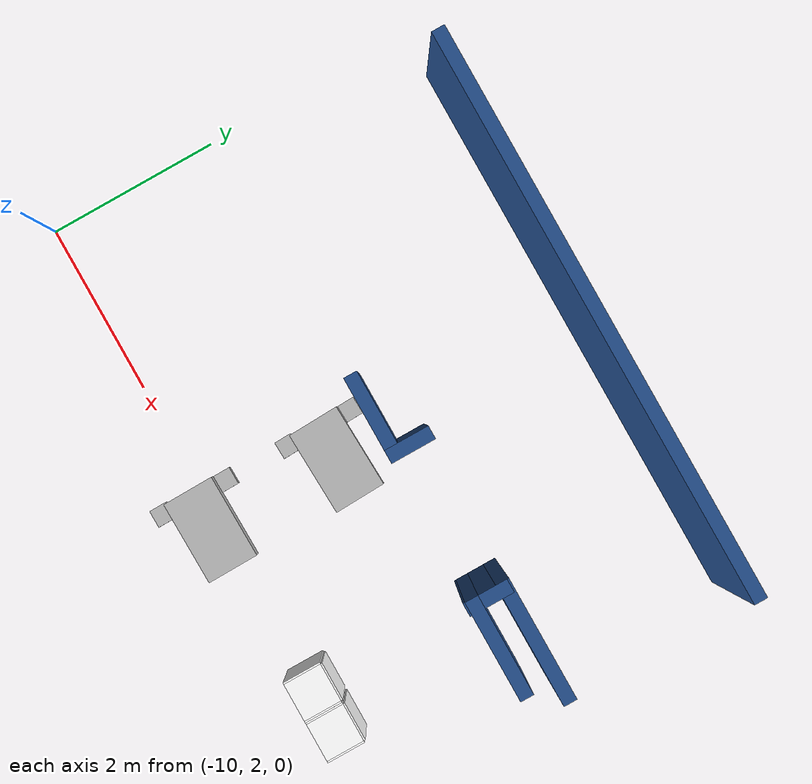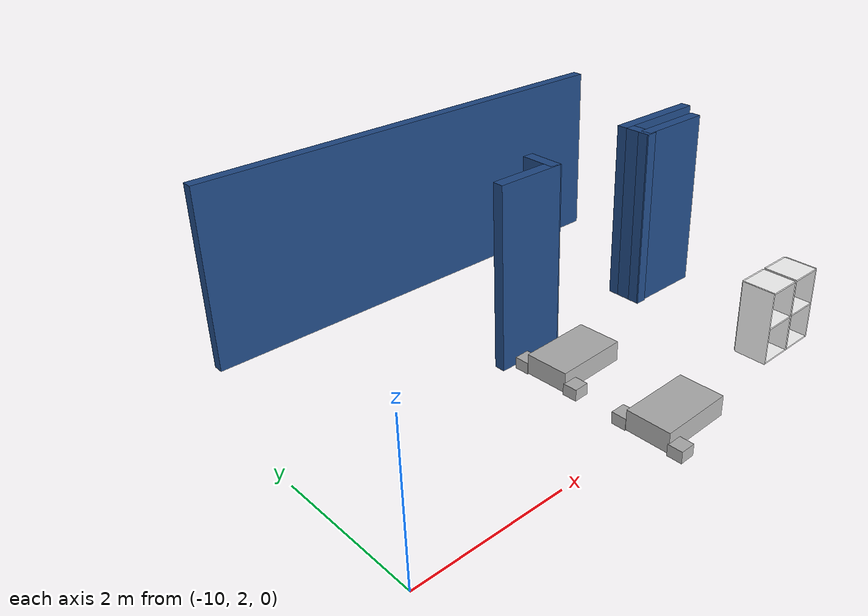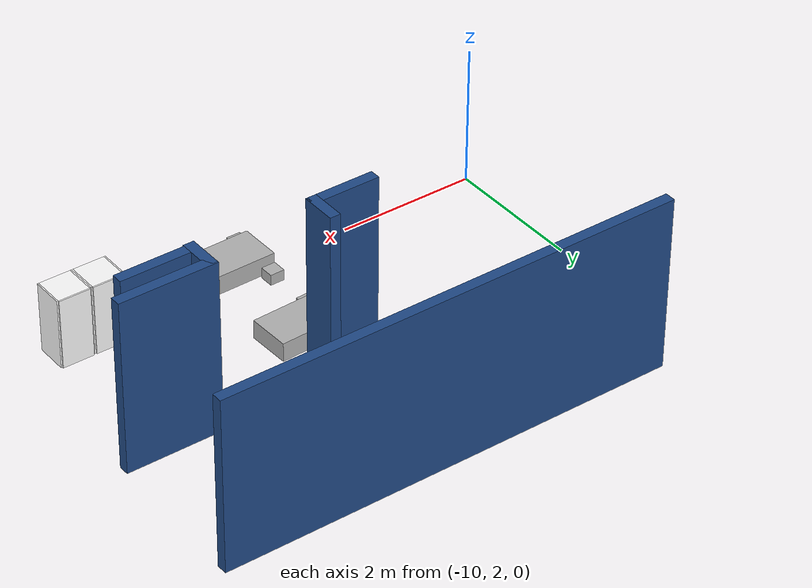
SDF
<sdf version="1.7">
 <world name="default">
  <model name="among_us_world">
   <pose>0.133216 -0.12311 0 0 -0 0</pose>
   <link name="Wall_109">
    <collision name="Wall_109_Collision">
     <geometry><box><size>1.12677 0.15 2.5</size></box></geometry>
     <pose>0 0 1.25 0 -0 0</pose>
    </collision>
    <visual name="Wall_109_Visual">
     <pose>0 0 1.25 0 -0 0</pose>
     <geometry><box><size>1.12677 0.15 2.5</size></box></geometry>
     <material>
      <ambient>0.12549 0.290196 0.529412 1</ambient>
      <diffuse>0.12549 0.290196 0.529412 1</diffuse>
      <specular>0.08 0.08 0.08 1</specular>
      <emissive>0 0 0 1</emissive>
      <pbr>
       <metal>
        <albedo_map>model://among_us_world/materials/textures/ceiling_tiled_32_74_135.jpg</albedo_map>
        <roughness>0.85</roughness>
        <metalness>0</metalness>
       </metal>
      </pbr>
     </material>
     <meta><layer>0</layer></meta>
    </visual>
    <pose>-3.97634 4.1841 0 0 -0 3.14159</pose>
   </link>
   <link name="Wall_110">
    <collision name="Wall_110_Collision">
     <geometry><box><size>0.5 0.15 2.5</size></box></geometry>
     <pose>0 0 1.25 0 -0 0</pose>
    </collision>
    <visual name="Wall_110_Visual">
     <pose>0 0 1.25 0 -0 0</pose>
     <geometry><box><size>0.5 0.15 2.5</size></box></geometry>
     <material>
      <ambient>0.12549 0.290196 0.529412 1</ambient>
      <diffuse>0.12549 0.290196 0.529412 1</diffuse>
      <specular>0.08 0.08 0.08 1</specular>
      <emissive>0 0 0 1</emissive>
      <pbr><metal><roughness>0.85</roughness><metalness>0</metalness></metal></pbr>
     </material>
     <meta><layer>0</layer></meta>
    </visual>
    <pose>-4.46462 4.33852 0 0 -0 1.5708</pose>
   </link>
   <link name="Wall_111">
    <collision name="Wall_111_Collision">
     <geometry><box><size>1.37673 0.15 2.5</size></box></geometry>
     <pose>0 0 1.25 0 -0 0</pose>
    </collision>
    <visual name="Wall_111_Visual">
     <pose>0 0 1.25 0 -0 0</pose>
     <geometry><box><size>1.37673 0.15 2.5</size></box></geometry>
     <material>
      <ambient>0.12549 0.290196 0.529412 1</ambient>
      <diffuse>0.12549 0.290196 0.529412 1</diffuse>
      <specular>0.08 0.08 0.08 1</specular>
      <emissive>0 0 0 1</emissive>
      <pbr>
       <metal>
        <albedo_map>model://asphalt_plane/materials/textures/tarmac.png</albedo_map>
        <roughness>0.85</roughness>
        <metalness>0</metalness>
       </metal>
      </pbr>
     </material>
     <meta><layer>0</layer></meta>
    </visual>
    <pose>-3.85134 4.5341 0 0 -0 0</pose>
   </link>
   <link name="Wall_31">
    <collision name="Wall_31_Collision">
     <geometry><box><size>6.5 0.15 2.5</size></box></geometry>
     <pose>0 0 1.25 0 -0 0</pose>
    </collision>
    <visual name="Wall_31_Visual">
     <pose>0 0 1.25 0 -0 0</pose>
     <geometry><box><size>6.5 0.15 2.5</size></box></geometry>
     <material>
      <ambient>0.12549 0.290196 0.529412 1</ambient>
      <diffuse>0.12549 0.290196 0.529412 1</diffuse>
      <specular>0.08 0.08 0.08 1</specular>
      <emissive>0 0 0 1</emissive>
      <pbr>
       <metal>
        <albedo_map>model://asphalt_plane/materials/textures/tarmac.png</albedo_map>
        <roughness>0.85</roughness>
        <metalness>0</metalness>
       </metal>
      </pbr>
     </material>
     <meta><layer>0</layer></meta>
    </visual>
    <pose>-6.36249 6.66662 0 0 -0 3.14159</pose>
   </link>
   <link name="Wall_97">
    <collision name="Wall_97_Collision">
     <geometry><box><size>0.5 0.15 2.5</size></box></geometry>
     <pose>0 0 1.25 0 -0 0</pose>
    </collision>
    <visual name="Wall_97_Visual">
     <pose>0 0 1.25 0 -0 0</pose>
     <geometry><box><size>0.5 0.15 2.5</size></box></geometry>
     <material>
      <ambient>0.12549 0.290196 0.529412 1</ambient>
      <diffuse>0.12549 0.290196 0.529412 1</diffuse>
      <specular>0.08 0.08 0.08 1</specular>
      <emissive>0 0 0 1</emissive>
      <pbr><metal><roughness>0.85</roughness><metalness>0</metalness></metal></pbr>
     </material>
     <meta><layer>0</layer></meta>
    </visual>
    <pose>-6.16454 4.40555 0 0 -0 -1.5708</pose>
   </link>
   <link name="Wall_98">
    <collision name="Wall_98_Collision">
     <geometry><box><size>0.954414 0.15 2.5</size></box></geometry>
     <pose>0 0 1.25 0 -0 0</pose>
    </collision>
    <visual name="Wall_98_Visual">
     <pose>0 0 1.25 0 -0 0</pose>
     <geometry><box><size>0.954414 0.15 2.5</size></box></geometry>
     <material>
      <ambient>0.12549 0.290196 0.529412 1</ambient>
      <diffuse>0.12549 0.290196 0.529412 1</diffuse>
      <specular>0.08 0.08 0.08 1</specular>
      <emissive>0 0 0 1</emissive>
      <pbr>
       <metal>
        <albedo_map>model://among_us_world/materials/textures/ceiling_tiled_32_74_135.jpg</albedo_map>
        <roughness>0.85</roughness>
        <metalness>0</metalness>
       </metal>
      </pbr>
     </material>
     <meta><layer>0</layer></meta>
    </visual>
    <pose>-6.5823 4.23055 0 0 -0 3.14159</pose>
   </link>
   <static>1</static>
  </model>
  <model name="bed">
   <link name="link_1">
    <inertial>
     <mass>0.166557</mass>
     <inertia>
      <ixx>0.00618823</ixx>
      <ixy>0</ixy>
      <ixz>0</ixz>
      <iyy>0.0149173</iyy>
      <iyz>0</iyz>
      <izz>0.0190304</izz>
     </inertia>
    </inertial>
    <pose>0.268517 -0.007523 0.053425 0 -0 0</pose>
    <visual name="visual">
     <geometry><box><size>1 0.609172 0.273416</size></box></geometry>
     <material>
      <ambient>0.7 0.7 0.7 1</ambient>
      <diffuse>0.7 0.7 0.7 1</diffuse>
      <specular>0.08 0.08 0.08 1</specular>
      <emissive>0 0 0 1</emissive>
      <pbr><metal><roughness>0.8</roughness><metalness>0</metalness></metal></pbr>
     </material>
    </visual>
    <collision name="collision">
     <geometry><box><size>1 0.609172 0.273416</size></box></geometry>
     <surface>
      <friction>
       <ode><mu>1</mu><mu2>1</mu2><fdir1>0 0 0</fdir1><slip1>0</slip1><slip2>0</slip2></ode>
       <torsional>
        <coefficient>1</coefficient>
        <patch_radius>0</patch_radius>
        <surface_radius>0</surface_radius>
        <use_patch_radius>1</use_patch_radius>
        <ode><slip>0</slip></ode>
       </torsional>
      </friction>
      <bounce><restitution_coefficient>0</restitution_coefficient><threshold>1e+06</threshold></bounce>
      <contact>
       <collide_without_contact>0</collide_without_contact>
       <collide_without_contact_bitmask>1</collide_without_contact_bitmask>
       <collide_bitmask>1</collide_bitmask>
       <ode>
        <soft_cfm>0</soft_cfm>
        <soft_erp>0.2</soft_erp>
        <kp>1e+13</kp>
        <kd>1</kd>
        <max_vel>0.01</max_vel>
        <min_depth>0</min_depth>
       </ode>
       <bullet>
        <split_impulse>1</split_impulse>
        <split_impulse_penetration_threshold>-0.01</split_impulse_penetration_threshold>
        <soft_cfm>0</soft_cfm>
        <soft_erp>0.2</soft_erp>
        <kp>1e+13</kp>
        <kd>1</kd>
       </bullet>
      </contact>
     </surface>
    </collision>
   </link>
   <link name="link_2">
    <inertial>
     <mass>0.00661892</mass>
     <inertia>
      <ixx>3.651e-05</ixx>
      <ixy>0</ixy>
      <ixz>0</ixz>
      <iyy>3.722e-05</iyy>
      <iyz>0</iyz>
      <izz>4.631e-05</izz>
     </inertia>
    </inertial>
    <pose>-0.144333 -0.400103 -0.02691 0 -0 0</pose>
    <visual name="visual">
     <geometry><box><size>0.206441 0.203314 0.157681</size></box></geometry>
     <material>
      <ambient>0.7 0.7 0.7 1</ambient>
      <diffuse>0.7 0.7 0.7 1</diffuse>
      <specular>0.08 0.08 0.08 1</specular>
      <emissive>0 0 0 1</emissive>
      <pbr><metal><roughness>0.8</roughness><metalness>0</metalness></metal></pbr>
     </material>
    </visual>
    <collision name="collision">
     <geometry><box><size>0.206441 0.203314 0.157681</size></box></geometry>
     <surface>
      <friction>
       <ode><mu>1</mu><mu2>1</mu2><fdir1>0 0 0</fdir1><slip1>0</slip1><slip2>0</slip2></ode>
       <torsional>
        <coefficient>1</coefficient>
        <patch_radius>0</patch_radius>
        <surface_radius>0</surface_radius>
        <use_patch_radius>1</use_patch_radius>
        <ode><slip>0</slip></ode>
       </torsional>
      </friction>
      <bounce><restitution_coefficient>0</restitution_coefficient><threshold>1e+06</threshold></bounce>
      <contact>
       <collide_without_contact>0</collide_without_contact>
       <collide_without_contact_bitmask>1</collide_without_contact_bitmask>
       <collide_bitmask>1</collide_bitmask>
       <ode>
        <soft_cfm>0</soft_cfm>
        <soft_erp>0.2</soft_erp>
        <kp>1e+13</kp>
        <kd>1</kd>
        <max_vel>0.01</max_vel>
        <min_depth>0</min_depth>
       </ode>
       <bullet>
        <split_impulse>1</split_impulse>
        <split_impulse_penetration_threshold>-0.01</split_impulse_penetration_threshold>
        <soft_cfm>0</soft_cfm>
        <soft_erp>0.2</soft_erp>
        <kp>1e+13</kp>
        <kd>1</kd>
       </bullet>
      </contact>
     </surface>
    </collision>
   </link>
   <link name="link_2_clone">
    <inertial>
     <mass>0.00661892</mass>
     <inertia>
      <ixx>3.651e-05</ixx>
      <ixy>0</ixy>
      <ixz>0</ixz>
      <iyy>3.722e-05</iyy>
      <iyz>0</iyz>
      <izz>4.631e-05</izz>
     </inertia>
    </inertial>
    <pose>-0.124183 0.407627 -0.026515 0 -0 0</pose>
    <visual name="visual">
     <geometry><box><size>0.206441 0.203314 0.157681</size></box></geometry>
     <material>
      <ambient>0.7 0.7 0.7 1</ambient>
      <diffuse>0.7 0.7 0.7 1</diffuse>
      <specular>0.08 0.08 0.08 1</specular>
      <emissive>0 0 0 1</emissive>
      <pbr><metal><roughness>0.8</roughness><metalness>0</metalness></metal></pbr>
     </material>
    </visual>
    <collision name="collision">
     <geometry><box><size>0.206441 0.203314 0.157681</size></box></geometry>
     <surface>
      <friction>
       <ode><mu>1</mu><mu2>1</mu2><fdir1>0 0 0</fdir1><slip1>0</slip1><slip2>0</slip2></ode>
       <torsional>
        <coefficient>1</coefficient>
        <patch_radius>0</patch_radius>
        <surface_radius>0</surface_radius>
        <use_patch_radius>1</use_patch_radius>
        <ode><slip>0</slip></ode>
       </torsional>
      </friction>
      <bounce><restitution_coefficient>0</restitution_coefficient><threshold>1e+06</threshold></bounce>
      <contact>
       <collide_without_contact>0</collide_without_contact>
       <collide_without_contact_bitmask>1</collide_without_contact_bitmask>
       <collide_bitmask>1</collide_bitmask>
       <ode>
        <soft_cfm>0</soft_cfm>
        <soft_erp>0.2</soft_erp>
        <kp>1e+13</kp>
        <kd>1</kd>
        <max_vel>0.01</max_vel>
        <min_depth>0</min_depth>
       </ode>
       <bullet>
        <split_impulse>1</split_impulse>
        <split_impulse_penetration_threshold>-0.01</split_impulse_penetration_threshold>
        <soft_cfm>0</soft_cfm>
        <soft_erp>0.2</soft_erp>
        <kp>1e+13</kp>
        <kd>1</kd>
       </bullet>
      </contact>
     </surface>
    </collision>
   </link>
   <static>1</static>
   <pose>-6.50619 3.49112 0.093278 1.6e-05 -0 0.037709</pose>
  </model>
  <model name="bed_clone">
   <link name="link_1">
    <inertial>
     <mass>0.166557</mass>
     <inertia>
      <ixx>0.00618823</ixx>
      <ixy>0</ixy>
      <ixz>0</ixz>
      <iyy>0.0149173</iyy>
      <iyz>0</iyz>
      <izz>0.0190304</izz>
     </inertia>
    </inertial>
    <pose>0.268517 -0.007523 0.053425 0 -0 0</pose>
    <visual name="visual">
     <geometry><box><size>1 0.609172 0.273416</size></box></geometry>
     <material>
      <ambient>0.7 0.7 0.7 1</ambient>
      <diffuse>0.7 0.7 0.7 1</diffuse>
      <specular>0.08 0.08 0.08 1</specular>
      <emissive>0 0 0 1</emissive>
      <pbr><metal><roughness>0.8</roughness><metalness>0</metalness></metal></pbr>
     </material>
    </visual>
    <collision name="collision">
     <geometry><box><size>1 0.609172 0.273416</size></box></geometry>
     <surface>
      <friction>
       <ode><mu>1</mu><mu2>1</mu2><fdir1>0 0 0</fdir1><slip1>0</slip1><slip2>0</slip2></ode>
       <torsional>
        <coefficient>1</coefficient>
        <patch_radius>0</patch_radius>
        <surface_radius>0</surface_radius>
        <use_patch_radius>1</use_patch_radius>
        <ode><slip>0</slip></ode>
       </torsional>
      </friction>
      <bounce><restitution_coefficient>0</restitution_coefficient><threshold>1e+06</threshold></bounce>
      <contact>
       <collide_without_contact>0</collide_without_contact>
       <collide_without_contact_bitmask>1</collide_without_contact_bitmask>
       <collide_bitmask>1</collide_bitmask>
       <ode>
        <soft_cfm>0</soft_cfm>
        <soft_erp>0.2</soft_erp>
        <kp>1e+13</kp>
        <kd>1</kd>
        <max_vel>0.01</max_vel>
        <min_depth>0</min_depth>
       </ode>
       <bullet>
        <split_impulse>1</split_impulse>
        <split_impulse_penetration_threshold>-0.01</split_impulse_penetration_threshold>
        <soft_cfm>0</soft_cfm>
        <soft_erp>0.2</soft_erp>
        <kp>1e+13</kp>
        <kd>1</kd>
       </bullet>
      </contact>
     </surface>
    </collision>
   </link>
   <link name="link_2">
    <inertial>
     <mass>0.00661892</mass>
     <inertia>
      <ixx>3.651e-05</ixx>
      <ixy>0</ixy>
      <ixz>0</ixz>
      <iyy>3.722e-05</iyy>
      <iyz>0</iyz>
      <izz>4.631e-05</izz>
     </inertia>
    </inertial>
    <pose>-0.144333 -0.400103 -0.02691 0 -0 0</pose>
    <visual name="visual">
     <geometry><box><size>0.206441 0.203314 0.157681</size></box></geometry>
     <material>
      <ambient>0.7 0.7 0.7 1</ambient>
      <diffuse>0.7 0.7 0.7 1</diffuse>
      <specular>0.08 0.08 0.08 1</specular>
      <emissive>0 0 0 1</emissive>
      <pbr><metal><roughness>0.8</roughness><metalness>0</metalness></metal></pbr>
     </material>
    </visual>
    <collision name="collision">
     <geometry><box><size>0.206441 0.203314 0.157681</size></box></geometry>
     <surface>
      <friction>
       <ode><mu>1</mu><mu2>1</mu2><fdir1>0 0 0</fdir1><slip1>0</slip1><slip2>0</slip2></ode>
       <torsional>
        <coefficient>1</coefficient>
        <patch_radius>0</patch_radius>
        <surface_radius>0</surface_radius>
        <use_patch_radius>1</use_patch_radius>
        <ode><slip>0</slip></ode>
       </torsional>
      </friction>
      <bounce><restitution_coefficient>0</restitution_coefficient><threshold>1e+06</threshold></bounce>
      <contact>
       <collide_without_contact>0</collide_without_contact>
       <collide_without_contact_bitmask>1</collide_without_contact_bitmask>
       <collide_bitmask>1</collide_bitmask>
       <ode>
        <soft_cfm>0</soft_cfm>
        <soft_erp>0.2</soft_erp>
        <kp>1e+13</kp>
        <kd>1</kd>
        <max_vel>0.01</max_vel>
        <min_depth>0</min_depth>
       </ode>
       <bullet>
        <split_impulse>1</split_impulse>
        <split_impulse_penetration_threshold>-0.01</split_impulse_penetration_threshold>
        <soft_cfm>0</soft_cfm>
        <soft_erp>0.2</soft_erp>
        <kp>1e+13</kp>
        <kd>1</kd>
       </bullet>
      </contact>
     </surface>
    </collision>
   </link>
   <link name="link_2_clone">
    <inertial>
     <mass>0.00661892</mass>
     <inertia>
      <ixx>3.651e-05</ixx>
      <ixy>0</ixy>
      <ixz>0</ixz>
      <iyy>3.722e-05</iyy>
      <iyz>0</iyz>
      <izz>4.631e-05</izz>
     </inertia>
    </inertial>
    <pose>-0.124183 0.407627 -0.026515 0 -0 0</pose>
    <visual name="visual">
     <geometry><box><size>0.206441 0.203314 0.157681</size></box></geometry>
     <material>
      <ambient>0.7 0.7 0.7 1</ambient>
      <diffuse>0.7 0.7 0.7 1</diffuse>
      <specular>0.08 0.08 0.08 1</specular>
      <emissive>0 0 0 1</emissive>
      <pbr><metal><roughness>0.8</roughness><metalness>0</metalness></metal></pbr>
     </material>
    </visual>
    <collision name="collision">
     <geometry><box><size>0.206441 0.203314 0.157681</size></box></geometry>
     <surface>
      <friction>
       <ode><mu>1</mu><mu2>1</mu2><fdir1>0 0 0</fdir1><slip1>0</slip1><slip2>0</slip2></ode>
       <torsional>
        <coefficient>1</coefficient>
        <patch_radius>0</patch_radius>
        <surface_radius>0</surface_radius>
        <use_patch_radius>1</use_patch_radius>
        <ode><slip>0</slip></ode>
       </torsional>
      </friction>
      <bounce><restitution_coefficient>0</restitution_coefficient><threshold>1e+06</threshold></bounce>
      <contact>
       <collide_without_contact>0</collide_without_contact>
       <collide_without_contact_bitmask>1</collide_without_contact_bitmask>
       <collide_bitmask>1</collide_bitmask>
       <ode>
        <soft_cfm>0</soft_cfm>
        <soft_erp>0.2</soft_erp>
        <kp>1e+13</kp>
        <kd>1</kd>
        <max_vel>0.01</max_vel>
        <min_depth>0</min_depth>
       </ode>
       <bullet>
        <split_impulse>1</split_impulse>
        <split_impulse_penetration_threshold>-0.01</split_impulse_penetration_threshold>
        <soft_cfm>0</soft_cfm>
        <soft_erp>0.2</soft_erp>
        <kp>1e+13</kp>
        <kd>1</kd>
       </bullet>
      </contact>
     </surface>
    </collision>
   </link>
   <static>1</static>
   <pose>-6.51457 1.90124 0.093283 0 -0 0.014289</pose>
  </model>
  <model name="cabinet">
   <static>1</static>
   <link name="cabinet_bottom_plate">
    <inertial>
     <pose>0 0 -1 0 -0 0</pose>
     <inertia><ixx>2.05</ixx><ixy>0</ixy><ixz>0</ixz><iyy>2.05</iyy><iyz>0</iyz><izz>2.05</izz></inertia>
     <mass>25</mass>
    </inertial>
    <collision name="cabinet_bottom_plate_geom">
     <pose>0 0 0.01 0 -0 0</pose>
     <geometry><box><size>0.45 0.45 0.02</size></box></geometry>
    </collision>
    <visual name="cabinet_bottom_plate_geom_visual">
     <pose>0 0 0.01 0 -0 0</pose>
     <geometry><box><size>0.45 0.45 0.02</size></box></geometry>
     <material>
      <ambient>1 1 1 1</ambient>
      <diffuse>1 1 1 1</diffuse>
      <specular>0.08 0.08 0.08 1</specular>
      <emissive>0 0 0 1</emissive>
      <pbr>
       <metal>
        <albedo_map>model://among_us_world/materials/textures/legacy_wood.jpg</albedo_map>
        <roughness>0.62</roughness>
        <metalness>0</metalness>
       </metal>
      </pbr>
     </material>
    </visual>
    <collision name="cabinet_bottom_plate_geom_cabinet_back_plate">
     <pose>0.235 0 0.51 0 -0 0</pose>
     <geometry><box><size>0.02 0.45 1.02</size></box></geometry>
    </collision>
    <visual name="cabinet_bottom_plate_geom_cabinet_back_plate_visual">
     <pose>0.235 0 0.51 0 -0 0</pose>
     <geometry><box><size>0.02 0.45 1.02</size></box></geometry>
     <material>
      <ambient>1 1 1 1</ambient>
      <diffuse>1 1 1 1</diffuse>
      <specular>0.08 0.08 0.08 1</specular>
      <emissive>0 0 0 1</emissive>
      <pbr>
       <metal>
        <albedo_map>model://among_us_world/materials/textures/legacy_wood.jpg</albedo_map>
        <roughness>0.62</roughness>
        <metalness>0</metalness>
       </metal>
      </pbr>
     </material>
    </visual>
    <collision name="cabinet_bottom_plate_geom_cabinet_left_plate">
     <pose>0 0.235 0.51 0 -0 0</pose>
     <geometry><box><size>0.45 0.02 1.02</size></box></geometry>
    </collision>
    <visual name="cabinet_bottom_plate_geom_cabinet_left_plate_visual">
     <pose>0 0.235 0.51 0 -0 0</pose>
     <geometry><box><size>0.45 0.02 1.02</size></box></geometry>
     <material>
      <ambient>1 1 1 1</ambient>
      <diffuse>1 1 1 1</diffuse>
      <specular>0.08 0.08 0.08 1</specular>
      <emissive>0 0 0 1</emissive>
      <pbr>
       <metal>
        <albedo_map>model://among_us_world/materials/textures/legacy_wood.jpg</albedo_map>
        <roughness>0.62</roughness>
        <metalness>0</metalness>
       </metal>
      </pbr>
     </material>
    </visual>
    <collision name="cabinet_bottom_plate_geom_cabinet_middle_plate">
     <pose>0 0 0.51 0 -0 0</pose>
     <geometry><box><size>0.45 0.45 0.02</size></box></geometry>
    </collision>
    <visual name="cabinet_bottom_plate_geom_cabinet_middle_plate_visual">
     <pose>0 0 0.51 0 -0 0</pose>
     <geometry><box><size>0.45 0.45 0.02</size></box></geometry>
     <material>
      <ambient>1 1 1 1</ambient>
      <diffuse>1 1 1 1</diffuse>
      <specular>0.08 0.08 0.08 1</specular>
      <emissive>0 0 0 1</emissive>
      <pbr>
       <metal>
        <albedo_map>model://among_us_world/materials/textures/legacy_wood.jpg</albedo_map>
        <roughness>0.62</roughness>
        <metalness>0</metalness>
       </metal>
      </pbr>
     </material>
    </visual>
    <collision name="cabinet_bottom_plate_geom_cabinet_right_plate">
     <pose>0 -0.235 0.51 0 -0 0</pose>
     <geometry><box><size>0.45 0.02 1.02</size></box></geometry>
    </collision>
    <visual name="cabinet_bottom_plate_geom_cabinet_right_plate_visual">
     <pose>0 -0.235 0.51 0 -0 0</pose>
     <geometry><box><size>0.45 0.02 1.02</size></box></geometry>
     <material>
      <ambient>1 1 1 1</ambient>
      <diffuse>1 1 1 1</diffuse>
      <specular>0.08 0.08 0.08 1</specular>
      <emissive>0 0 0 1</emissive>
      <pbr>
       <metal>
        <albedo_map>model://among_us_world/materials/textures/legacy_wood.jpg</albedo_map>
        <roughness>0.62</roughness>
        <metalness>0</metalness>
       </metal>
      </pbr>
     </material>
    </visual>
    <collision name="cabinet_bottom_plate_geom_cabinet_top_plate">
     <pose>0 0 1.01 0 -0 0</pose>
     <geometry><box><size>0.45 0.45 0.02</size></box></geometry>
    </collision>
    <visual name="cabinet_bottom_plate_geom_cabinet_top_plate_visual">
     <pose>0 0 1.01 0 -0 0</pose>
     <geometry><box><size>0.45 0.45 0.02</size></box></geometry>
     <material>
      <ambient>1 1 1 1</ambient>
      <diffuse>1 1 1 1</diffuse>
      <specular>0.08 0.08 0.08 1</specular>
      <emissive>0 0 0 1</emissive>
      <pbr>
       <metal>
        <albedo_map>model://among_us_world/materials/textures/legacy_wood.jpg</albedo_map>
        <roughness>0.62</roughness>
        <metalness>0</metalness>
       </metal>
      </pbr>
     </material>
    </visual>
   </link>
   <pose>-3.71836 2.07896 0 0 -0 1.57</pose>
  </model>
  <model name="cabinet_clone_1">
   <static>1</static>
   <link name="cabinet_bottom_plate">
    <inertial>
     <pose>0 0 -1 0 -0 0</pose>
     <inertia><ixx>2.05</ixx><ixy>0</ixy><ixz>0</ixz><iyy>2.05</iyy><iyz>0</iyz><izz>2.05</izz></inertia>
     <mass>25</mass>
    </inertial>
    <collision name="cabinet_bottom_plate_geom">
     <pose>0 0 0.01 0 -0 0</pose>
     <geometry><box><size>0.45 0.45 0.02</size></box></geometry>
    </collision>
    <visual name="cabinet_bottom_plate_geom_visual">
     <pose>0 0 0.01 0 -0 0</pose>
     <geometry><box><size>0.45 0.45 0.02</size></box></geometry>
     <material>
      <ambient>1 1 1 1</ambient>
      <diffuse>1 1 1 1</diffuse>
      <specular>0.08 0.08 0.08 1</specular>
      <emissive>0 0 0 1</emissive>
      <pbr>
       <metal>
        <albedo_map>model://among_us_world/materials/textures/legacy_wood.jpg</albedo_map>
        <roughness>0.62</roughness>
        <metalness>0</metalness>
       </metal>
      </pbr>
     </material>
    </visual>
    <collision name="cabinet_bottom_plate_geom_cabinet_back_plate">
     <pose>0.235 0 0.51 0 -0 0</pose>
     <geometry><box><size>0.02 0.45 1.02</size></box></geometry>
    </collision>
    <visual name="cabinet_bottom_plate_geom_cabinet_back_plate_visual">
     <pose>0.235 0 0.51 0 -0 0</pose>
     <geometry><box><size>0.02 0.45 1.02</size></box></geometry>
     <material>
      <ambient>1 1 1 1</ambient>
      <diffuse>1 1 1 1</diffuse>
      <specular>0.08 0.08 0.08 1</specular>
      <emissive>0 0 0 1</emissive>
      <pbr>
       <metal>
        <albedo_map>model://among_us_world/materials/textures/legacy_wood.jpg</albedo_map>
        <roughness>0.62</roughness>
        <metalness>0</metalness>
       </metal>
      </pbr>
     </material>
    </visual>
    <collision name="cabinet_bottom_plate_geom_cabinet_left_plate">
     <pose>0 0.235 0.51 0 -0 0</pose>
     <geometry><box><size>0.45 0.02 1.02</size></box></geometry>
    </collision>
    <visual name="cabinet_bottom_plate_geom_cabinet_left_plate_visual">
     <pose>0 0.235 0.51 0 -0 0</pose>
     <geometry><box><size>0.45 0.02 1.02</size></box></geometry>
     <material>
      <ambient>1 1 1 1</ambient>
      <diffuse>1 1 1 1</diffuse>
      <specular>0.08 0.08 0.08 1</specular>
      <emissive>0 0 0 1</emissive>
      <pbr>
       <metal>
        <albedo_map>model://among_us_world/materials/textures/legacy_wood.jpg</albedo_map>
        <roughness>0.62</roughness>
        <metalness>0</metalness>
       </metal>
      </pbr>
     </material>
    </visual>
    <collision name="cabinet_bottom_plate_geom_cabinet_middle_plate">
     <pose>0 0 0.51 0 -0 0</pose>
     <geometry><box><size>0.45 0.45 0.02</size></box></geometry>
    </collision>
    <visual name="cabinet_bottom_plate_geom_cabinet_middle_plate_visual">
     <pose>0 0 0.51 0 -0 0</pose>
     <geometry><box><size>0.45 0.45 0.02</size></box></geometry>
     <material>
      <ambient>1 1 1 1</ambient>
      <diffuse>1 1 1 1</diffuse>
      <specular>0.08 0.08 0.08 1</specular>
      <emissive>0 0 0 1</emissive>
      <pbr>
       <metal>
        <albedo_map>model://among_us_world/materials/textures/legacy_wood.jpg</albedo_map>
        <roughness>0.62</roughness>
        <metalness>0</metalness>
       </metal>
      </pbr>
     </material>
    </visual>
    <collision name="cabinet_bottom_plate_geom_cabinet_right_plate">
     <pose>0 -0.235 0.51 0 -0 0</pose>
     <geometry><box><size>0.45 0.02 1.02</size></box></geometry>
    </collision>
    <visual name="cabinet_bottom_plate_geom_cabinet_right_plate_visual">
     <pose>0 -0.235 0.51 0 -0 0</pose>
     <geometry><box><size>0.45 0.02 1.02</size></box></geometry>
     <material>
      <ambient>1 1 1 1</ambient>
      <diffuse>1 1 1 1</diffuse>
      <specular>0.08 0.08 0.08 1</specular>
      <emissive>0 0 0 1</emissive>
      <pbr>
       <metal>
        <albedo_map>model://among_us_world/materials/textures/legacy_wood.jpg</albedo_map>
        <roughness>0.62</roughness>
        <metalness>0</metalness>
       </metal>
      </pbr>
     </material>
    </visual>
    <collision name="cabinet_bottom_plate_geom_cabinet_top_plate">
     <pose>0 0 1.01 0 -0 0</pose>
     <geometry><box><size>0.45 0.45 0.02</size></box></geometry>
    </collision>
    <visual name="cabinet_bottom_plate_geom_cabinet_top_plate_visual">
     <pose>0 0 1.01 0 -0 0</pose>
     <geometry><box><size>0.45 0.45 0.02</size></box></geometry>
     <material>
      <ambient>1 1 1 1</ambient>
      <diffuse>1 1 1 1</diffuse>
      <specular>0.08 0.08 0.08 1</specular>
      <emissive>0 0 0 1</emissive>
      <pbr>
       <metal>
        <albedo_map>model://among_us_world/materials/textures/legacy_wood.jpg</albedo_map>
        <roughness>0.62</roughness>
        <metalness>0</metalness>
       </metal>
      </pbr>
     </material>
    </visual>
   </link>
   <pose>-4.20863 2.07845 0 0 -0 1.57</pose>
  </model>
 </world>
</sdf>
